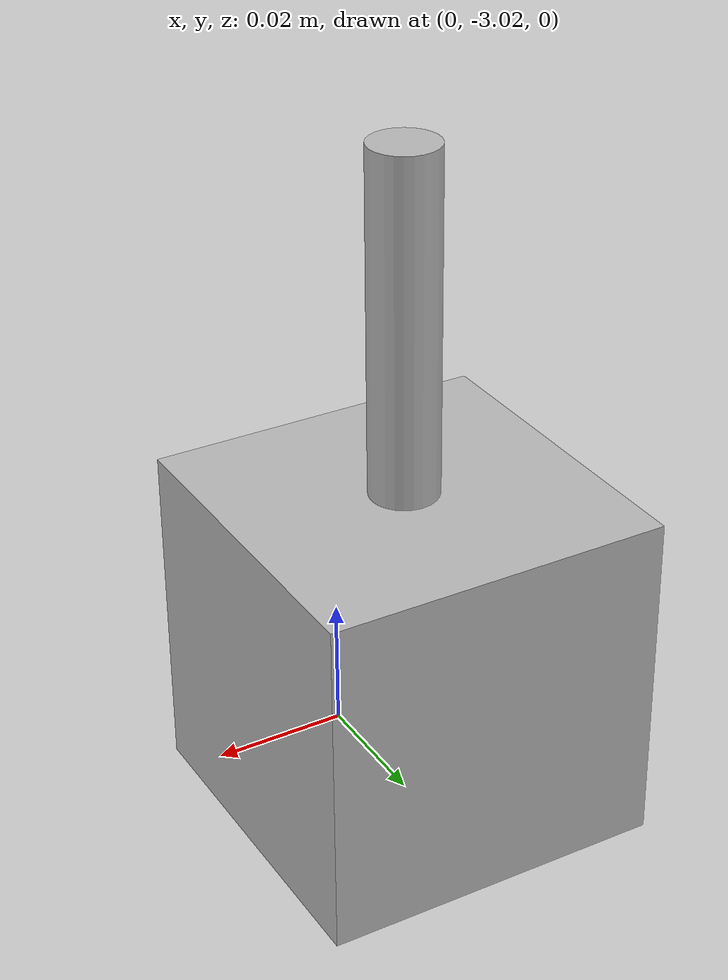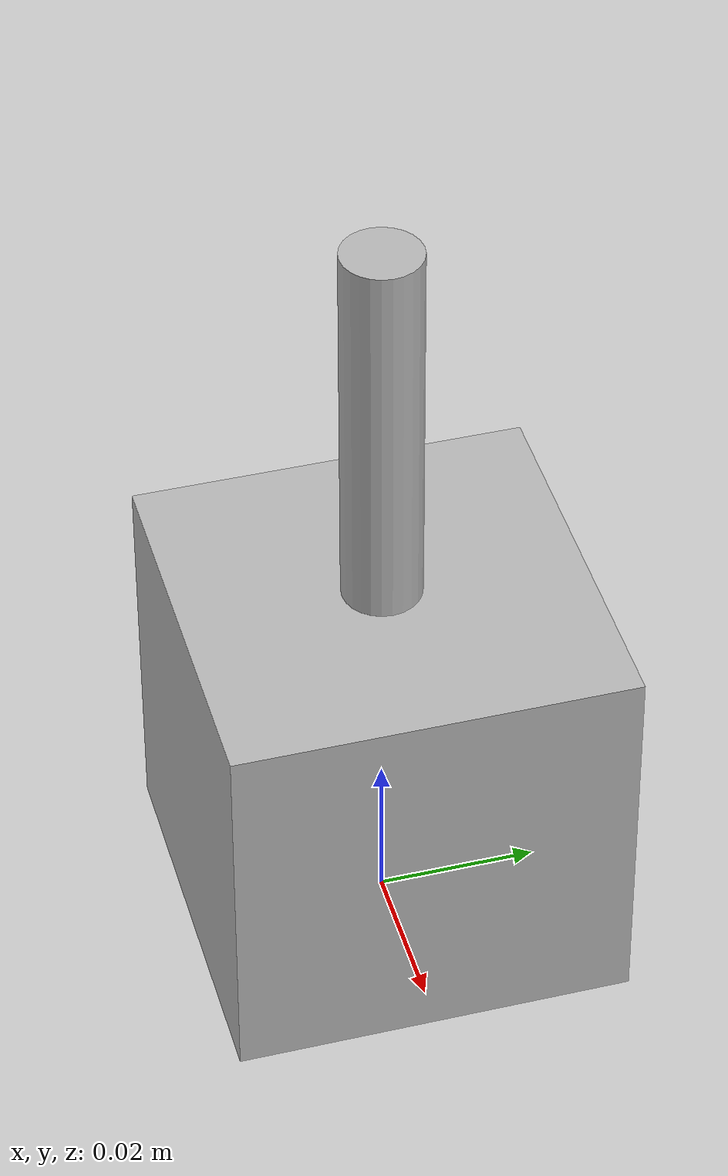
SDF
<?xml version="1.0" ?>
<sdf version="1.4">
  <world name="default">
    <!-- Ground -->
    <include>
      <uri>model://ground_plane</uri>
    </include>

    <!-- Wireless transmitter sensor model -->
    <model name="wirelessTransmitter">
      <static>true</static>
      <pose>0 0 0.025 0 0 0</pose>
      <link name="link">
        <inertial>
          <mass>0.1</mass>
        </inertial>

        <visual name="base">
          <geometry>
            <box>
              <size>.05 .05 .05</size>
            </box>
          </geometry>
        </visual>

        <visual name="antenna">
        <pose>0 0 .04 0 0 0</pose>
          <geometry>
            <cylinder>
              <radius>.005</radius>
              <length>.07</length>
            </cylinder>
          </geometry>
        </visual>

        <sensor name="wirelessTransmitter" type="wireless_transmitter">
          <always_on>1</always_on>
          <update_rate>1</update_rate>
          <visualize>true</visualize>
          <transceiver>
            <essid>osrf</essid>
            <frequency>2442.0</frequency>
            <power>14.5</power>
            <gain>2.6</gain>
          </transceiver>
        </sensor>
      </link>
    </model>

    <!-- Wireless receiver sensor model -->
    <model name="wirelessReceiver">
      <static>true</static>
      <pose>0 -3 0.025 0 0 0</pose>
      <link name="link">
        <inertial>
          <mass>0.1</mass>
        </inertial>

        <visual name="base">
          <geometry>
            <box>
              <size>.05 .05 .05</size>
            </box>
          </geometry>
        </visual>

        <visual name="antenna">
        <pose>0 0 .04 0 0 0</pose>
          <geometry>
            <cylinder>
              <radius>.005</radius>
              <length>.07</length>
            </cylinder>
          </geometry>
        </visual>

        <sensor name="wirelessReceiver" type="wireless_receiver">
          <always_on>1</always_on>
          <update_rate>1</update_rate>
          <visualize>true</visualize>
          <transceiver>
            <min_frequency>2412.0</min_frequency>
            <max_frequency>2484.0</max_frequency>
            <power>14.5</power>
            <gain>2.5</gain>
            <sensitivity>-90.0</sensitivity>
          </transceiver>
        </sensor>
      </link>
    </model>

    <!-- A global light source -->
    <include>
      <uri>model://sun</uri>
    </include>
  </world>
</sdf>
